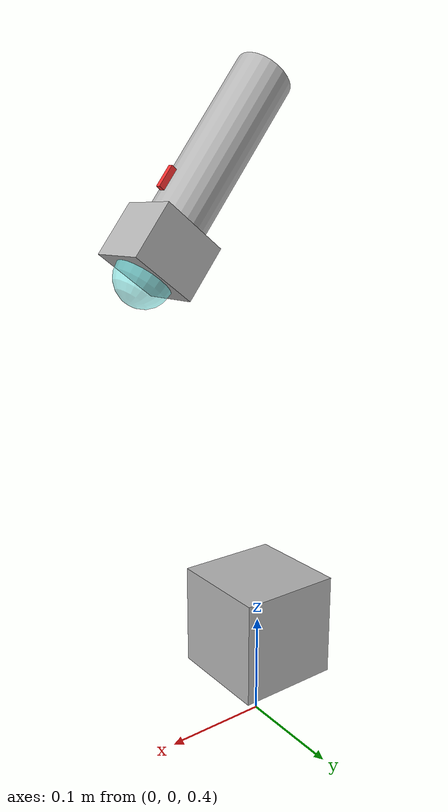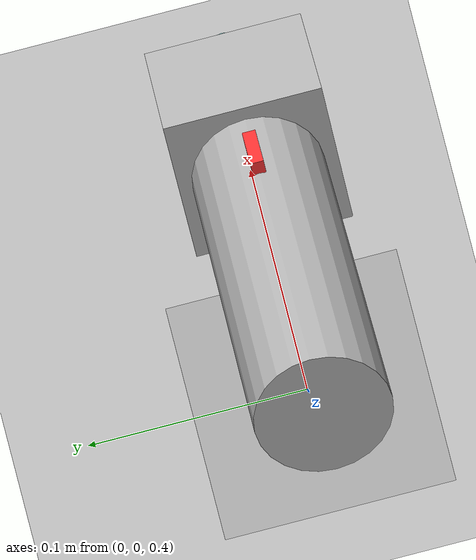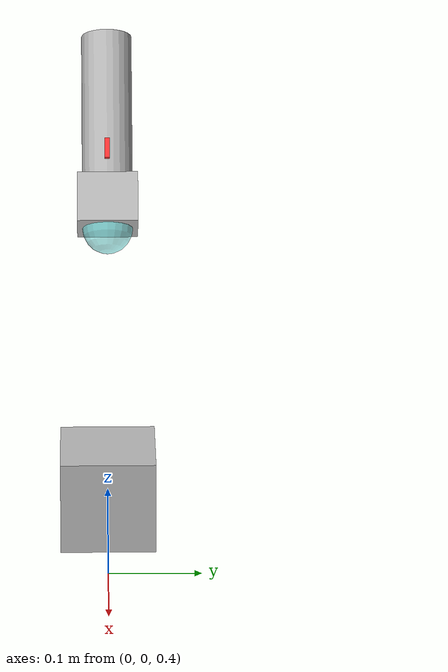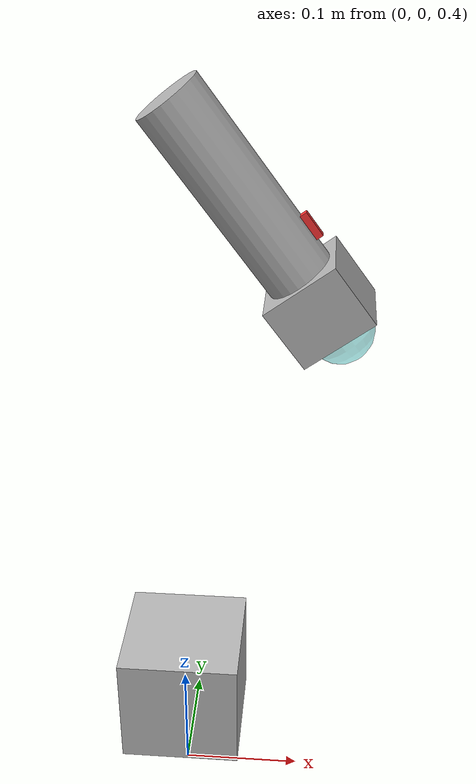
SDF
<?xml version="1.0" encoding="UTF-8" ?>
<sdf version='1.6'>
  <world name='default'>
    <include>
      <uri>model://ground_plane</uri>
    </include>

    <model name="camera">
      <pose>0 0 0.5 0 0 0</pose>
      <static>true</static>
      <link name="link">
        <collision name="collision">
          <geometry>
            <box>
              <size>0.1 0.1 0.1</size>
            </box>
          </geometry>
        </collision>
        <visual name="visual">
          <geometry>
            <box>
              <size>0.1 0.1 0.1</size>
            </box>
          </geometry>
        </visual>
        <sensor name="camera" type="camera">
          <camera>
            <horizontal_fov>1.047</horizontal_fov>
            <image>
              <width>10</width>
              <height>10</height>
            </image>
            <clip>
              <near>0.1</near>
              <far>100</far>
            </clip>
          </camera>
          <always_on>1</always_on>
          <update_rate>10</update_rate>
          <visualize>false</visualize>
        </sensor>
      </link>
    </model>

    <model name='light_model'>
      <static>1</static>
      <pose>0 0 1 0 2.5 0</pose>
      <link name='handle'>
        <pose>0 0 0.075 0 0 0</pose>
        <visual name='visual'>
          <geometry>
            <cylinder>
              <radius>0.025</radius>
              <length>0.15</length>
            </cylinder>
          </geometry>
        </visual>
        <light name='button' type='point'>
          <pose>-0.025 0 0.05 0 0 0</pose>
          <attenuation>
            <range>0.20</range>
            <linear>0.10</linear>
          </attenuation>
          <diffuse>1 0.2 0.2 1</diffuse>
          <specular>1 1 1 1</specular>
        </light>
        <visual name='button'>
          <pose>-0.025 0 0.05 0 0 0</pose>
          <geometry>
            <box>
              <size>0.01 0.005 0.02</size>
            </box>
          </geometry>
          <material>
            <ambient>1 0.2 0.2 1</ambient>
            <diffuse>1 0.2 0.2 1</diffuse>
            <specular>1 1 1 1</specular>
            <emissive>1 0.2 0.2 1</emissive>
          </material>
        </visual>
      </link>
      <link name='head'>
        <pose>0 0 0.175 0 0 0</pose>
        <visual name='visual'>
          <geometry>
            <box>
              <size>0.06 0.06 0.05</size>
            </box>
          </geometry>
        </visual>
      </link>
      <link name='light_source'>
        <pose>0 0 0.20 0 0 0</pose>
        <light name='lamp' type='spot'>
          <pose>0 0 0.0 0 3.14159 0</pose>
          <attenuation>
            <range>30</range>
            <linear>0.05</linear>
          </attenuation>
          <diffuse>0.5 1 1 1</diffuse>
          <specular>1 1 1 1</specular>
          <spot>
            <inner_angle>0.3</inner_angle>
            <outer_angle>0.35</outer_angle>
            <falloff>1</falloff>
          </spot>
          <direction>0 0 -1</direction>
        </light>
        <visual name='lamp'>
          <geometry>
            <sphere>
              <radius>0.025</radius>
            </sphere>
          </geometry>
          <transparency>0.4</transparency>
          <material>
            <ambient>0.5 1 1 1</ambient>
            <diffuse>0.5 1 1 1</diffuse>
            <specular>1 1 1 1</specular>
            <emissive>0.5 1 1 1</emissive>
          </material>
        </visual>
      </link>
      <joint name='joint1' type='fixed'>
        <parent>handle</parent>
        <child>head</child>
      </joint>
      <joint name='joint2' type='fixed'>
        <parent>head</parent>
        <child>light_source</child>
      </joint>
      <plugin name='light_control' filename='libRosFlashLightPlugin.so'>
        <service_name>light_switch</service_name>
        <enable>true</enable>
        <light>
          <id>light_source/lamp</id>
          <duration>1.0</duration>
          <interval>0.6</interval>
          <enable>true</enable>
        </light>
        <light>
          <id>handle/button</id>
          <duration>0.6</duration>
          <interval>0.8</interval>
          <enable>true</enable>
        </light>
      </plugin>
    </model>
    <gravity>0 0 -9.8</gravity>
  </world>
</sdf>
